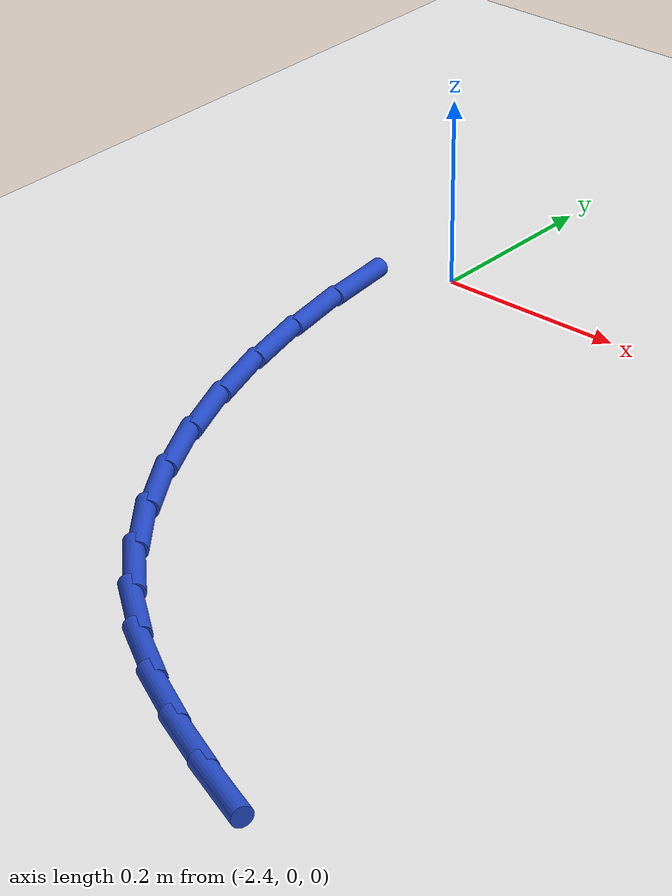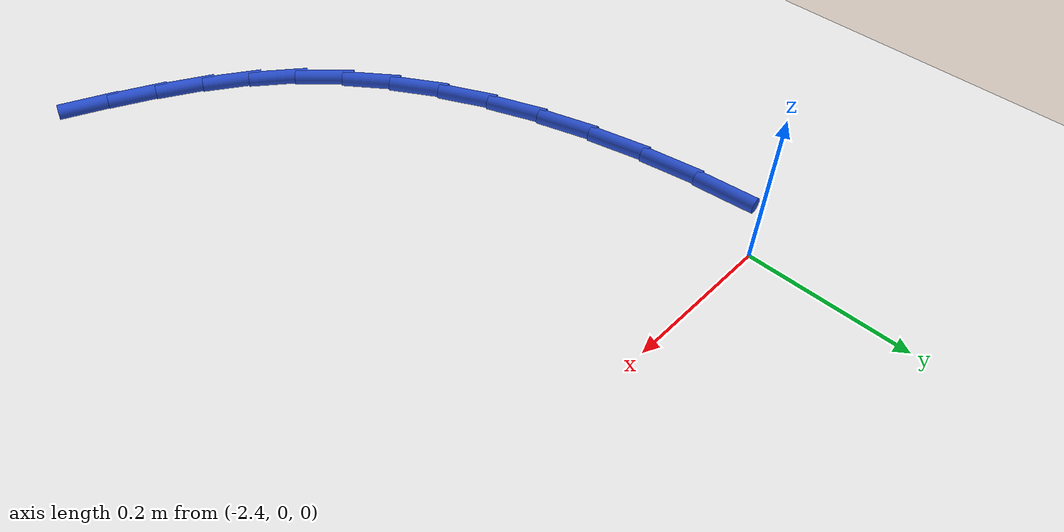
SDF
<sdf version="1.6">
 <world name="default">
  <model name="ground_plane">
   <static>1</static>
   <link name="link">
    <collision name="collision">
     <geometry><plane><normal>0 0 1</normal><size>100 100</size></plane></geometry>
     <surface><friction><ode><mu>100</mu><mu2>50</mu2></ode></friction></surface>
    </collision>
    <visual name="visual">
     <cast_shadows>0</cast_shadows>
     <geometry><plane><normal>0 0 1</normal><size>100 100</size></plane></geometry>
     <material>
      <script><uri>file://media/materials/scripts/gazebo.material</uri><name>Gazebo/WhiteGlow</name></script>
     </material>
    </visual>
   </link>
  </model>
  <model name="line">
   <link name="link_56">
    <pose>-2.461270185016833 -0.07621898648510493 0.01 0 1.57 -1.4599893686770906</pose>
    <collision name="collision">
     <geometry><cylinder><radius>0.01</radius><length>0.08</length></cylinder></geometry>
    </collision>
    <visual name="visual">
     <material>
      <script><name>Gazebo/Blue</name><uri>file://media/materials/scripts/gazebo.material</uri></script>
     </material>
     <geometry><cylinder><radius>0.01</radius><length>0.08</length></cylinder></geometry>
    </visual>
   </link>
   <link name="link_57">
    <pose>-2.4529941054927877 -0.15060222170102205 0.01 0 1.57 -1.3944342119608488</pose>
    <collision name="collision">
     <geometry><cylinder><radius>0.01</radius><length>0.08</length></cylinder></geometry>
    </collision>
    <visual name="visual">
     <material>
      <script><name>Gazebo/Blue</name><uri>file://media/materials/scripts/gazebo.material</uri></script>
     </material>
     <geometry><cylinder><radius>0.01</radius><length>0.08</length></cylinder></geometry>
    </visual>
   </link>
   <link name="link_58">
    <pose>-2.4399831055269776 -0.2236100960729717 0.01 0 1.57 -1.3262016777121302</pose>
    <collision name="collision">
     <geometry><cylinder><radius>0.01</radius><length>0.08</length></cylinder></geometry>
    </collision>
    <visual name="visual">
     <material>
      <script><name>Gazebo/Blue</name><uri>file://media/materials/scripts/gazebo.material</uri></script>
     </material>
     <geometry><cylinder><radius>0.01</radius><length>0.08</length></cylinder></geometry>
    </visual>
   </link>
   <link name="link_59">
    <pose>-2.422269797748921 -0.2945791417908522 0.01 0 1.57 -1.2539657273206655</pose>
    <collision name="collision">
     <geometry><cylinder><radius>0.01</radius><length>0.08</length></cylinder></geometry>
    </collision>
    <visual name="visual">
     <material>
      <script><name>Gazebo/Blue</name><uri>file://media/materials/scripts/gazebo.material</uri></script>
     </material>
     <geometry><cylinder><radius>0.01</radius><length>0.08</length></cylinder></geometry>
    </visual>
   </link>
   <link name="link_60">
    <pose>-2.399886794788136 -0.36284589104455856 0.01 0 1.57 -1.1762939642735506</pose>
    <collision name="collision">
     <geometry><cylinder><radius>0.01</radius><length>0.08</length></cylinder></geometry>
    </collision>
    <visual name="visual">
     <material>
      <script><name>Gazebo/Blue</name><uri>file://media/materials/scripts/gazebo.material</uri></script>
     </material>
     <geometry><cylinder><radius>0.01</radius><length>0.08</length></cylinder></geometry>
    </visual>
   </link>
   <link name="link_61">
    <pose>-2.3728667092741396 -0.4277468760239886 0.01 0 1.57 -1.0916489613423186</pose>
    <collision name="collision">
     <geometry><cylinder><radius>0.01</radius><length>0.08</length></cylinder></geometry>
    </collision>
    <visual name="visual">
     <material>
      <script><name>Gazebo/Blue</name><uri>file://media/materials/scripts/gazebo.material</uri></script>
     </material>
     <geometry><cylinder><radius>0.01</radius><length>0.08</length></cylinder></geometry>
    </visual>
   </link>
   <link name="link_62">
    <pose>-2.3412421538364505 -0.4886186289190377 0.01 0 1.57 -0.9984354477122063</pose>
    <collision name="collision">
     <geometry><cylinder><radius>0.01</radius><length>0.08</length></cylinder></geometry>
    </collision>
    <visual name="visual">
     <material>
      <script><name>Gazebo/Blue</name><uri>file://media/materials/scripts/gazebo.material</uri></script>
     </material>
     <geometry><cylinder><radius>0.01</radius><length>0.08</length></cylinder></geometry>
    </visual>
   </link>
   <link name="link_63">
    <pose>-2.3050457411045846 -0.5447976819196035 0.01 0 1.57 -0.895128063759434</pose>
    <collision name="collision">
     <geometry><cylinder><radius>0.01</radius><length>0.08</length></cylinder></geometry>
    </collision>
    <visual name="visual">
     <material>
      <script><name>Gazebo/Blue</name><uri>file://media/materials/scripts/gazebo.material</uri></script>
     </material>
     <geometry><cylinder><radius>0.01</radius><length>0.08</length></cylinder></geometry>
    </visual>
   </link>
   <link name="link_64">
    <pose>-2.264310083708062 -0.5956205672155817 0.01 0 1.57 -0.7805907785229764</pose>
    <collision name="collision">
     <geometry><cylinder><radius>0.01</radius><length>0.08</length></cylinder></geometry>
    </collision>
    <visual name="visual">
     <material>
      <script><name>Gazebo/Blue</name><uri>file://media/materials/scripts/gazebo.material</uri></script>
     </material>
     <geometry><cylinder><radius>0.01</radius><length>0.08</length></cylinder></geometry>
    </visual>
   </link>
   <link name="link_65">
    <pose>-2.2190693504477688 -0.6404283990312345 0.01 0 1.57 -0.6633643044958393</pose>
    <collision name="collision">
     <geometry><cylinder><radius>0.01</radius><length>0.08</length></cylinder></geometry>
    </collision>
    <visual name="visual">
     <material>
      <script><name>Gazebo/Blue</name><uri>file://media/materials/scripts/gazebo.material</uri></script>
     </material>
     <geometry><cylinder><radius>0.01</radius><length>0.08</length></cylinder></geometry>
    </visual>
   </link>
   <link name="link_66">
    <pose>-2.1695499413586887 -0.679128302595687 0.01 0 1.57 -0.563411123636385</pose>
    <collision name="collision">
     <geometry><cylinder><radius>0.01</radius><length>0.08</length></cylinder></geometry>
    </collision>
    <visual name="visual">
     <material>
      <script><name>Gazebo/Blue</name><uri>file://media/materials/scripts/gazebo.material</uri></script>
     </material>
     <geometry><cylinder><radius>0.01</radius><length>0.08</length></cylinder></geometry>
    </visual>
   </link>
   <link name="link_67">
    <pose>-2.1163537332381246 -0.7127329673849033 0.01 0 1.57 -0.4852644479409778</pose>
    <collision name="collision">
     <geometry><cylinder><radius>0.01</radius><length>0.08</length></cylinder></geometry>
    </collision>
    <visual name="visual">
     <material>
      <script><name>Gazebo/Blue</name><uri>file://media/materials/scripts/gazebo.material</uri></script>
     </material>
     <geometry><cylinder><radius>0.01</radius><length>0.08</length></cylinder></geometry>
    </visual>
   </link>
   <link name="link_68">
    <pose>-2.060126042249061 -0.7423829869542091 0.01 0 1.57 -0.42935732377800523</pose>
    <collision name="collision">
     <geometry><cylinder><radius>0.01</radius><length>0.08</length></cylinder></geometry>
    </collision>
    <visual name="visual">
     <material>
      <script><name>Gazebo/Blue</name><uri>file://media/materials/scripts/gazebo.material</uri></script>
     </material>
     <geometry><cylinder><radius>0.01</radius><length>0.08</length></cylinder></geometry>
    </visual>
   </link>
   <link name="link_69">
    <pose>-2.001512184554485 -0.7692189548589279 0.01 0 1.57 -0.39499883971719485</pose>
    <collision name="collision">
     <geometry><cylinder><radius>0.01</radius><length>0.08</length></cylinder></geometry>
    </collision>
    <visual name="visual">
     <material>
      <script><name>Gazebo/Blue</name><uri>file://media/materials/scripts/gazebo.material</uri></script>
     </material>
     <geometry><cylinder><radius>0.01</radius><length>0.08</length></cylinder></geometry>
    </visual>
   </link>
  </model>
 </world>
</sdf>
